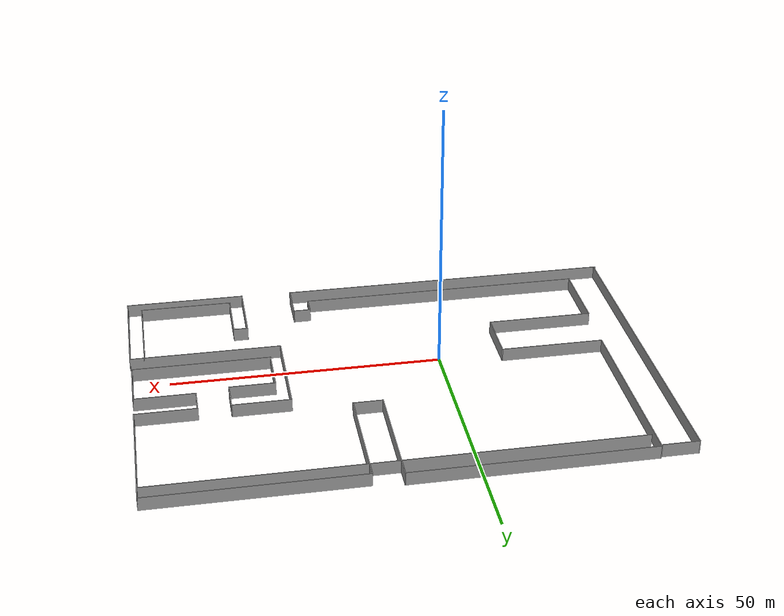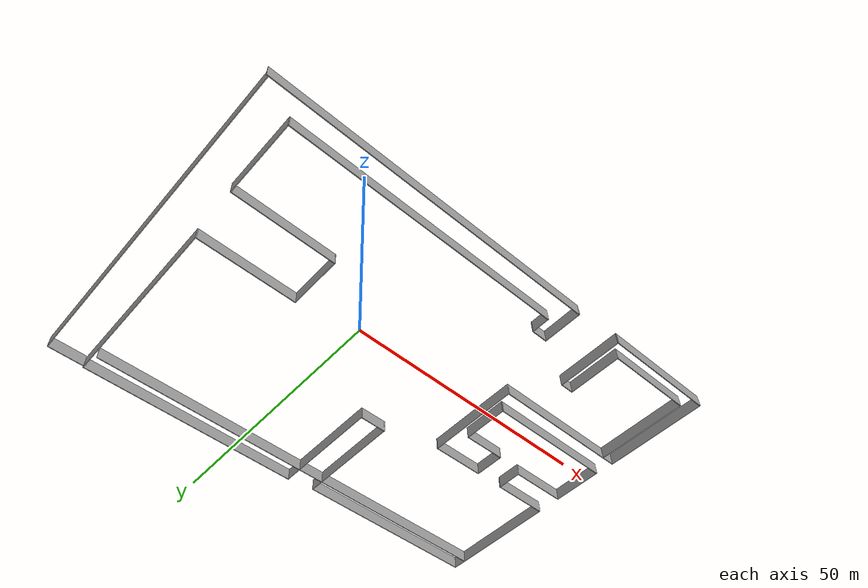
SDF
<?xml version='1.0'?>
<sdf version='1.6'>
  <model name='multivehicle_course'>
    <pose frame=''>9.55814 5.54542 0 0 -0 0</pose>
    <link name='Wall_56'>
      <collision name='Wall_56_Collision'>
        <geometry>
          <box>
            <size>63 0.15 2.5</size>
          </box>
        </geometry>
        <pose frame=''>0 0 1.25 0 -0 0</pose>
      </collision>
      <visual name='Wall_56_Visual'>
        <pose frame=''>0 0 1.25 0 -0 0</pose>
        <geometry>
          <box>
            <size>63 0.15 2.5</size>
          </box>
        </geometry>
        <material>
          <script>
            <uri>file://media/materials/scripts/gazebo.material</uri>
            <name>Gazebo/Grey</name>
          </script>
          <ambient>1 1 1 1</ambient>
        </material>
        <meta>
          <layer>0</layer>
        </meta>
      </visual>
      <pose frame=''>-15.925 -31.4 0 0 -0 0</pose>
    </link>
    <link name='Wall_57'>
      <collision name='Wall_57_Collision'>
        <geometry>
          <box>
            <size>7.5 0.15 2.5</size>
          </box>
        </geometry>
        <pose frame=''>0 0 1.25 0 -0 0</pose>
      </collision>
      <visual name='Wall_57_Visual'>
        <pose frame=''>0 0 1.25 0 -0 0</pose>
        <geometry>
          <box>
            <size>7.5 0.15 2.5</size>
          </box>
        </geometry>
        <material>
          <script>
            <uri>file://media/materials/scripts/gazebo.material</uri>
            <name>Gazebo/Grey</name>
          </script>
          <ambient>1 1 1 1</ambient>
        </material>
        <meta>
          <layer>0</layer>
        </meta>
      </visual>
      <pose frame=''>15.5 -27.725 0 0 -0 1.5708</pose>
    </link>
    <link name='Wall_58'>
      <collision name='Wall_58_Collision'>
        <geometry>
          <box>
            <size>3.25 0.15 2.5</size>
          </box>
        </geometry>
        <pose frame=''>0 0 1.25 0 -0 0</pose>
      </collision>
      <visual name='Wall_58_Visual'>
        <pose frame=''>0 0 1.25 0 -0 0</pose>
        <geometry>
          <box>
            <size>3.25 0.15 2.5</size>
          </box>
        </geometry>
        <material>
          <script>
            <uri>file://media/materials/scripts/gazebo.material</uri>
            <name>Gazebo/Grey</name>
          </script>
          <ambient>1 1 1 1</ambient>
        </material>
        <meta>
          <layer>0</layer>
        </meta>
      </visual>
      <pose frame=''>13.95 -24.05 0 0 -0 3.14159</pose>
    </link>
    <link name='Wall_59'>
      <collision name='Wall_59_Collision'>
        <geometry>
          <box>
            <size>3.5 0.15 2.5</size>
          </box>
        </geometry>
        <pose frame=''>0 0 1.25 0 -0 0</pose>
      </collision>
      <visual name='Wall_59_Visual'>
        <pose frame=''>0 0 1.25 0 -0 0</pose>
        <geometry>
          <box>
            <size>3.5 0.15 2.5</size>
          </box>
        </geometry>
        <material>
          <script>
            <uri>file://media/materials/scripts/gazebo.material</uri>
            <name>Gazebo/Grey</name>
          </script>
          <ambient>1 1 1 1</ambient>
        </material>
        <meta>
          <layer>0</layer>
        </meta>
      </visual>
      <pose frame=''>12.4 -25.725 0 0 -0 -1.5708</pose>
    </link>
    <link name='Wall_60'>
      <collision name='Wall_60_Collision'>
        <geometry>
          <box>
            <size>53.25 0.15 2.5</size>
          </box>
        </geometry>
        <pose frame=''>0 0 1.25 0 -0 0</pose>
      </collision>
      <visual name='Wall_60_Visual'>
        <pose frame=''>0 0 1.25 0 -0 0</pose>
        <geometry>
          <box>
            <size>53.25 0.15 2.5</size>
          </box>
        </geometry>
        <material>
          <script>
            <uri>file://media/materials/scripts/gazebo.material</uri>
            <name>Gazebo/Grey</name>
          </script>
          <ambient>1 1 1 1</ambient>
        </material>
        <meta>
          <layer>0</layer>
        </meta>
      </visual>
      <pose frame=''>-14.15 -27.4 0 0 -0 3.14159</pose>
    </link>
    <link name='Wall_61'>
      <collision name='Wall_61_Collision'>
        <geometry>
          <box>
            <size>14.25 0.15 2.5</size>
          </box>
        </geometry>
        <pose frame=''>0 0 1.25 0 -0 0</pose>
      </collision>
      <visual name='Wall_61_Visual'>
        <pose frame=''>0 0 1.25 0 -0 0</pose>
        <geometry>
          <box>
            <size>14.25 0.15 2.5</size>
          </box>
        </geometry>
        <material>
          <script>
            <uri>file://media/materials/scripts/gazebo.material</uri>
            <name>Gazebo/Grey</name>
          </script>
          <ambient>1 1 1 1</ambient>
        </material>
        <meta>
          <layer>0</layer>
        </meta>
      </visual>
      <pose frame=''>-40.7 -20.35 0 0 -0 1.5708</pose>
    </link>
    <link name='Wall_62'>
      <collision name='Wall_62_Collision'>
        <geometry>
          <box>
            <size>19.75 0.15 2.5</size>
          </box>
        </geometry>
        <pose frame=''>0 0 1.25 0 -0 0</pose>
      </collision>
      <visual name='Wall_62_Visual'>
        <pose frame=''>0 0 1.25 0 -0 0</pose>
        <geometry>
          <box>
            <size>19.75 0.15 2.5</size>
          </box>
        </geometry>
        <material>
          <script>
            <uri>file://media/materials/scripts/gazebo.material</uri>
            <name>Gazebo/Grey</name>
          </script>
          <ambient>1 1 1 1</ambient>
        </material>
        <meta>
          <layer>0</layer>
        </meta>
      </visual>
      <pose frame=''>-30.9 -13.3 0 0 -0 0</pose>
    </link>
    <link name='Wall_63'>
      <collision name='Wall_63_Collision'>
        <geometry>
          <box>
            <size>10.25 0.15 2.5</size>
          </box>
        </geometry>
        <pose frame=''>0 0 1.25 0 -0 0</pose>
      </collision>
      <visual name='Wall_63_Visual'>
        <pose frame=''>0 0 1.25 0 -0 0</pose>
        <geometry>
          <box>
            <size>10.25 0.15 2.5</size>
          </box>
        </geometry>
        <material>
          <script>
            <uri>file://media/materials/scripts/gazebo.material</uri>
            <name>Gazebo/Grey</name>
          </script>
          <ambient>1 1 1 1</ambient>
        </material>
        <meta>
          <layer>0</layer>
        </meta>
      </visual>
      <pose frame=''>-21.1 -8.25 0 0 -0 1.5708</pose>
    </link>
    <link name='Wall_64'>
      <collision name='Wall_64_Collision'>
        <geometry>
          <box>
            <size>19.25 0.15 2.5</size>
          </box>
        </geometry>
        <pose frame=''>0 0 1.25 0 -0 0</pose>
      </collision>
      <visual name='Wall_64_Visual'>
        <pose frame=''>0 0 1.25 0 -0 0</pose>
        <geometry>
          <box>
            <size>19.25 0.15 2.5</size>
          </box>
        </geometry>
        <material>
          <script>
            <uri>file://media/materials/scripts/gazebo.material</uri>
            <name>Gazebo/Grey</name>
          </script>
          <ambient>1 1 1 1</ambient>
        </material>
        <meta>
          <layer>0</layer>
        </meta>
      </visual>
      <pose frame=''>-30.65 -3.2 0 0 -0 3.14159</pose>
    </link>
    <link name='Wall_65'>
      <collision name='Wall_65_Collision'>
        <geometry>
          <box>
            <size>35 0.15 2.5</size>
          </box>
        </geometry>
        <pose frame=''>0 0 1.25 0 -0 0</pose>
      </collision>
      <visual name='Wall_65_Visual'>
        <pose frame=''>0 0 1.25 0 -0 0</pose>
        <geometry>
          <box>
            <size>35 0.15 2.5</size>
          </box>
        </geometry>
        <material>
          <script>
            <uri>file://media/materials/scripts/gazebo.material</uri>
            <name>Gazebo/Grey</name>
          </script>
          <ambient>1 1 1 1</ambient>
        </material>
        <meta>
          <layer>0</layer>
        </meta>
      </visual>
      <pose frame=''>-40.2 14.225 0 0 -0 1.5708</pose>
    </link>
    <link name='Wall_66'>
      <collision name='Wall_66_Collision'>
        <geometry>
          <box>
            <size>44 0.15 2.5</size>
          </box>
        </geometry>
        <pose frame=''>0 0 1.25 0 -0 0</pose>
      </collision>
      <visual name='Wall_66_Visual'>
        <pose frame=''>0 0 1.25 0 -0 0</pose>
        <geometry>
          <box>
            <size>44 0.15 2.5</size>
          </box>
        </geometry>
        <material>
          <script>
            <uri>file://media/materials/scripts/gazebo.material</uri>
            <name>Gazebo/Grey</name>
          </script>
          <ambient>1 1 1 1</ambient>
        </material>
        <meta>
          <layer>0</layer>
        </meta>
      </visual>
      <pose frame=''>-18.275 31.65 0 0 -0 0</pose>
    </link>
    <link name='Wall_67'>
      <collision name='Wall_67_Collision'>
        <geometry>
          <box>
            <size>22 0.15 2.5</size>
          </box>
        </geometry>
        <pose frame=''>0 0 1.25 0 -0 0</pose>
      </collision>
      <visual name='Wall_67_Visual'>
        <pose frame=''>0 0 1.25 0 -0 0</pose>
        <geometry>
          <box>
            <size>22 0.15 2.5</size>
          </box>
        </geometry>
        <material>
          <script>
            <uri>file://media/materials/scripts/gazebo.material</uri>
            <name>Gazebo/Grey</name>
          </script>
          <ambient>1 1 1 1</ambient>
        </material>
        <meta>
          <layer>0</layer>
        </meta>
      </visual>
      <pose frame=''>3.65 20.725 0 0 -0 -1.5708</pose>
    </link>
    <link name='Wall_68'>
      <collision name='Wall_68_Collision'>
        <geometry>
          <box>
            <size>5.5 0.15 2.5</size>
          </box>
        </geometry>
        <pose frame=''>0 0 1.25 0 -0 0</pose>
      </collision>
      <visual name='Wall_68_Visual'>
        <pose frame=''>0 0 1.25 0 -0 0</pose>
        <geometry>
          <box>
            <size>5.5 0.15 2.5</size>
          </box>
        </geometry>
        <material>
          <script>
            <uri>file://media/materials/scripts/gazebo.material</uri>
            <name>Gazebo/Grey</name>
          </script>
          <ambient>1 1 1 1</ambient>
        </material>
        <meta>
          <layer>0</layer>
        </meta>
      </visual>
      <pose frame=''>6.325 9.8 0 0 -0 0</pose>
    </link>
    <link name='Wall_69'>
      <collision name='Wall_69_Collision'>
        <geometry>
          <box>
            <size>21.25 0.15 2.5</size>
          </box>
        </geometry>
        <pose frame=''>0 0 1.25 0 -0 0</pose>
      </collision>
      <visual name='Wall_69_Visual'>
        <pose frame=''>0 0 1.25 0 -0 0</pose>
        <geometry>
          <box>
            <size>21.25 0.15 2.5</size>
          </box>
        </geometry>
        <material>
          <script>
            <uri>file://media/materials/scripts/gazebo.material</uri>
            <name>Gazebo/Grey</name>
          </script>
          <ambient>1 1 1 1</ambient>
        </material>
        <meta>
          <layer>0</layer>
        </meta>
      </visual>
      <pose frame=''>9 20.35 0 0 -0 1.5708</pose>
    </link>
    <link name='Wall_70'>
      <collision name='Wall_70_Collision'>
        <geometry>
          <box>
            <size>38.25 0.15 2.5</size>
          </box>
        </geometry>
        <pose frame=''>0 0 1.25 0 -0 0</pose>
      </collision>
      <visual name='Wall_70_Visual'>
        <pose frame=''>0 0 1.25 0 -0 0</pose>
        <geometry>
          <box>
            <size>38.25 0.15 2.5</size>
          </box>
        </geometry>
        <material>
          <script>
            <uri>file://media/materials/scripts/gazebo.material</uri>
            <name>Gazebo/Grey</name>
          </script>
          <ambient>1 1 1 1</ambient>
        </material>
        <meta>
          <layer>0</layer>
        </meta>
      </visual>
      <pose frame=''>28.05 30.9 0 0 -0 0</pose>
    </link>
    <link name='Wall_71'>
      <collision name='Wall_71_Collision'>
        <geometry>
          <box>
            <size>24.25 0.15 2.5</size>
          </box>
        </geometry>
        <pose frame=''>0 0 1.25 0 -0 0</pose>
      </collision>
      <visual name='Wall_71_Visual'>
        <pose frame=''>0 0 1.25 0 -0 0</pose>
        <geometry>
          <box>
            <size>24.25 0.15 2.5</size>
          </box>
        </geometry>
        <material>
          <script>
            <uri>file://media/materials/scripts/gazebo.material</uri>
            <name>Gazebo/Grey</name>
          </script>
          <ambient>1 1 1 1</ambient>
        </material>
        <meta>
          <layer>0</layer>
        </meta>
      </visual>
      <pose frame=''>47.1 18.85 0 0 -0 -1.5708</pose>
    </link>
    <link name='Wall_72'>
      <collision name='Wall_72_Collision'>
        <geometry>
          <box>
            <size>11.25 0.15 2.5</size>
          </box>
        </geometry>
        <pose frame=''>0 0 1.25 0 -0 0</pose>
      </collision>
      <visual name='Wall_72_Visual'>
        <pose frame=''>0 0 1.25 0 -0 0</pose>
        <geometry>
          <box>
            <size>11.25 0.15 2.5</size>
          </box>
        </geometry>
        <material>
          <script>
            <uri>file://media/materials/scripts/gazebo.material</uri>
            <name>Gazebo/Grey</name>
          </script>
          <ambient>1 1 1 1</ambient>
        </material>
        <meta>
          <layer>0</layer>
        </meta>
      </visual>
      <pose frame=''>41.55 6.8 0 0 -0 3.14159</pose>
    </link>
    <link name='Wall_73'>
      <collision name='Wall_73_Collision'>
        <geometry>
          <box>
            <size>5 0.15 2.5</size>
          </box>
        </geometry>
        <pose frame=''>0 0 1.25 0 -0 0</pose>
      </collision>
      <visual name='Wall_73_Visual'>
        <pose frame=''>0 0 1.25 0 -0 0</pose>
        <geometry>
          <box>
            <size>5 0.15 2.5</size>
          </box>
        </geometry>
        <material>
          <script>
            <uri>file://media/materials/scripts/gazebo.material</uri>
            <name>Gazebo/Grey</name>
          </script>
          <ambient>1 1 1 1</ambient>
        </material>
        <meta>
          <layer>0</layer>
        </meta>
      </visual>
      <pose frame=''>36 4.375 0 0 -0 -1.5708</pose>
    </link>
    <link name='Wall_74'>
      <collision name='Wall_74_Collision'>
        <geometry>
          <box>
            <size>11.25 0.15 2.5</size>
          </box>
        </geometry>
        <pose frame=''>0 0 1.25 0 -0 0</pose>
      </collision>
      <visual name='Wall_74_Visual'>
        <pose frame=''>0 0 1.25 0 -0 0</pose>
        <geometry>
          <box>
            <size>11.25 0.15 2.5</size>
          </box>
        </geometry>
        <material>
          <script>
            <uri>file://media/materials/scripts/gazebo.material</uri>
            <name>Gazebo/Grey</name>
          </script>
          <ambient>1 1 1 1</ambient>
        </material>
        <meta>
          <layer>0</layer>
        </meta>
      </visual>
      <pose frame=''>41.55 1.95 0 0 -0 0</pose>
    </link>
    <link name='Wall_75'>
      <collision name='Wall_75_Collision'>
        <geometry>
          <box>
            <size>10 0.15 2.5</size>
          </box>
        </geometry>
        <pose frame=''>0 0 1.25 0 -0 0</pose>
      </collision>
      <visual name='Wall_75_Visual'>
        <pose frame=''>0 0 1.25 0 -0 0</pose>
        <geometry>
          <box>
            <size>10 0.15 2.5</size>
          </box>
        </geometry>
        <material>
          <script>
            <uri>file://media/materials/scripts/gazebo.material</uri>
            <name>Gazebo/Grey</name>
          </script>
          <ambient>1 1 1 1</ambient>
        </material>
        <meta>
          <layer>0</layer>
        </meta>
      </visual>
      <pose frame=''>47.1 -2.975 0 0 -0 -1.5708</pose>
    </link>
    <link name='Wall_76'>
      <collision name='Wall_76_Collision'>
        <geometry>
          <box>
            <size>25.5 0.15 2.5</size>
          </box>
        </geometry>
        <pose frame=''>0 0 1.25 0 -0 0</pose>
      </collision>
      <visual name='Wall_76_Visual'>
        <pose frame=''>0 0 1.25 0 -0 0</pose>
        <geometry>
          <box>
            <size>25.5 0.15 2.5</size>
          </box>
        </geometry>
        <material>
          <script>
            <uri>file://media/materials/scripts/gazebo.material</uri>
            <name>Gazebo/Grey</name>
          </script>
          <ambient>1 1 1 1</ambient>
        </material>
        <meta>
          <layer>0</layer>
        </meta>
      </visual>
      <pose frame=''>34.425 -7.9 0 0 -0 3.14159</pose>
    </link>
    <link name='Wall_77'>
      <collision name='Wall_77_Collision'>
        <geometry>
          <box>
            <size>9 0.15 2.5</size>
          </box>
        </geometry>
        <pose frame=''>0 0 1.25 0 -0 0</pose>
      </collision>
      <visual name='Wall_77_Visual'>
        <pose frame=''>0 0 1.25 0 -0 0</pose>
        <geometry>
          <box>
            <size>9 0.15 2.5</size>
          </box>
        </geometry>
        <material>
          <script>
            <uri>file://media/materials/scripts/gazebo.material</uri>
            <name>Gazebo/Grey</name>
          </script>
          <ambient>1 1 1 1</ambient>
        </material>
        <meta>
          <layer>0</layer>
        </meta>
      </visual>
      <pose frame=''>21.75 -3.475 0 0 -0 1.5708</pose>
    </link>
    <link name='Wall_78'>
      <collision name='Wall_78_Collision'>
        <geometry>
          <box>
            <size>8.5 0.15 2.5</size>
          </box>
        </geometry>
        <pose frame=''>0 0 1.25 0 -0 0</pose>
      </collision>
      <visual name='Wall_78_Visual'>
        <pose frame=''>0 0 1.25 0 -0 0</pose>
        <geometry>
          <box>
            <size>8.5 0.15 2.5</size>
          </box>
        </geometry>
        <material>
          <script>
            <uri>file://media/materials/scripts/gazebo.material</uri>
            <name>Gazebo/Grey</name>
          </script>
          <ambient>1 1 1 1</ambient>
        </material>
        <meta>
          <layer>0</layer>
        </meta>
      </visual>
      <pose frame=''>25.925 0.950001 0 0 -0 0</pose>
    </link>
    <link name='Wall_79'>
      <collision name='Wall_79_Collision'>
        <geometry>
          <box>
            <size>6 0.15 2.5</size>
          </box>
        </geometry>
        <pose frame=''>0 0 1.25 0 -0 0</pose>
      </collision>
      <visual name='Wall_79_Visual'>
        <pose frame=''>0 0 1.25 0 -0 0</pose>
        <geometry>
          <box>
            <size>6 0.15 2.5</size>
          </box>
        </geometry>
        <material>
          <script>
            <uri>file://media/materials/scripts/gazebo.material</uri>
            <name>Gazebo/Grey</name>
          </script>
          <ambient>1 1 1 1</ambient>
        </material>
        <meta>
          <layer>0</layer>
        </meta>
      </visual>
      <pose frame=''>30.1 3.875 0 0 -0 1.5708</pose>
    </link>
    <link name='Wall_80'>
      <collision name='Wall_80_Collision'>
        <geometry>
          <box>
            <size>10.75 0.15 2.5</size>
          </box>
        </geometry>
        <pose frame=''>0 0 1.25 0 -0 0</pose>
      </collision>
      <visual name='Wall_80_Visual'>
        <pose frame=''>0 0 1.25 0 -0 0</pose>
        <geometry>
          <box>
            <size>10.75 0.15 2.5</size>
          </box>
        </geometry>
        <material>
          <script>
            <uri>file://media/materials/scripts/gazebo.material</uri>
            <name>Gazebo/Grey</name>
          </script>
          <ambient>1 1 1 1</ambient>
        </material>
        <meta>
          <layer>0</layer>
        </meta>
      </visual>
      <pose frame=''>24.8 6.8 0 0 -0 3.14159</pose>
    </link>
    <link name='Wall_81'>
      <collision name='Wall_81_Collision'>
        <geometry>
          <box>
            <size>18.5 0.15 2.5</size>
          </box>
        </geometry>
        <pose frame=''>0 0 1.25 0 -0 0</pose>
      </collision>
      <visual name='Wall_81_Visual'>
        <pose frame=''>0 0 1.25 0 -0 0</pose>
        <geometry>
          <box>
            <size>18.5 0.15 2.5</size>
          </box>
        </geometry>
        <material>
          <script>
            <uri>file://media/materials/scripts/gazebo.material</uri>
            <name>Gazebo/Grey</name>
          </script>
          <ambient>1 1 1 1</ambient>
        </material>
        <meta>
          <layer>0</layer>
        </meta>
      </visual>
      <pose frame=''>19.5 -2.375 0 0 -0 -1.5708</pose>
    </link>
    <link name='Wall_82'>
      <collision name='Wall_82_Collision'>
        <geometry>
          <box>
            <size>28 0.15 2.5</size>
          </box>
        </geometry>
        <pose frame=''>0 0 1.25 0 -0 0</pose>
      </collision>
      <visual name='Wall_82_Visual'>
        <pose frame=''>0 0 1.25 0 -0 0</pose>
        <geometry>
          <box>
            <size>28 0.15 2.5</size>
          </box>
        </geometry>
        <material>
          <script>
            <uri>file://media/materials/scripts/gazebo.material</uri>
            <name>Gazebo/Grey</name>
          </script>
          <ambient>1 1 1 1</ambient>
        </material>
        <meta>
          <layer>0</layer>
        </meta>
      </visual>
      <pose frame=''>33.425 -11.55 0 0 -0 0</pose>
    </link>
    <link name='Wall_83'>
      <collision name='Wall_83_Collision'>
        <geometry>
          <box>
            <size>20.25 0.15 2.5</size>
          </box>
        </geometry>
        <pose frame=''>0 0 1.25 0 -0 0</pose>
      </collision>
      <visual name='Wall_83_Visual'>
        <pose frame=''>0 0 1.25 0 -0 0</pose>
        <geometry>
          <box>
            <size>20.25 0.15 2.5</size>
          </box>
        </geometry>
        <material>
          <script>
            <uri>file://media/materials/scripts/gazebo.material</uri>
            <name>Gazebo/Grey</name>
          </script>
          <ambient>1 1 1 1</ambient>
        </material>
        <meta>
          <layer>0</layer>
        </meta>
      </visual>
      <pose frame=''>47.35 -21.6 0 0 -0 -1.5708</pose>
    </link>
    <link name='Wall_84'>
      <collision name='Wall_84_Collision'>
        <geometry>
          <box>
            <size>22.5 0.15 2.5</size>
          </box>
        </geometry>
        <pose frame=''>0 0 1.25 0 -0 0</pose>
      </collision>
      <visual name='Wall_84_Visual'>
        <pose frame=''>0 0 1.25 0 -0 0</pose>
        <geometry>
          <box>
            <size>22.5 0.15 2.5</size>
          </box>
        </geometry>
        <material>
          <script>
            <uri>file://media/materials/scripts/gazebo.material</uri>
            <name>Gazebo/Grey</name>
          </script>
          <ambient>1 1 1 1</ambient>
        </material>
        <meta>
          <layer>0</layer>
        </meta>
      </visual>
      <pose frame=''>36.175 -31.65 0 0 -0 3.14159</pose>
    </link>
    <link name='Wall_85'>
      <collision name='Wall_85_Collision'>
        <geometry>
          <box>
            <size>12.75 0.15 2.5</size>
          </box>
        </geometry>
        <pose frame=''>0 0 1.25 0 -0 0</pose>
      </collision>
      <visual name='Wall_85_Visual'>
        <pose frame=''>0 0 1.25 0 -0 0</pose>
        <geometry>
          <box>
            <size>12.75 0.15 2.5</size>
          </box>
        </geometry>
        <material>
          <script>
            <uri>file://media/materials/scripts/gazebo.material</uri>
            <name>Gazebo/Grey</name>
          </script>
          <ambient>1 1 1 1</ambient>
        </material>
        <meta>
          <layer>0</layer>
        </meta>
      </visual>
      <pose frame=''>25 -25.35 0 0 -0 1.5708</pose>
    </link>
    <link name='Wall_86'>
      <collision name='Wall_86_Collision'>
        <geometry>
          <box>
            <size>2.75 0.15 2.5</size>
          </box>
        </geometry>
        <pose frame=''>0 0 1.25 0 -0 0</pose>
      </collision>
      <visual name='Wall_86_Visual'>
        <pose frame=''>0 0 1.25 0 -0 0</pose>
        <geometry>
          <box>
            <size>2.75 0.15 2.5</size>
          </box>
        </geometry>
        <material>
          <script>
            <uri>file://media/materials/scripts/gazebo.material</uri>
            <name>Gazebo/Grey</name>
          </script>
          <ambient>1 1 1 1</ambient>
        </material>
        <meta>
          <layer>0</layer>
        </meta>
      </visual>
      <pose frame=''>26.3 -19.05 0 0 -0 0</pose>
    </link>
    <link name='Wall_87'>
      <collision name='Wall_87_Collision'>
        <geometry>
          <box>
            <size>10.5 0.15 2.5</size>
          </box>
        </geometry>
        <pose frame=''>0 0 1.25 0 -0 0</pose>
      </collision>
      <visual name='Wall_87_Visual'>
        <pose frame=''>0 0 1.25 0 -0 0</pose>
        <geometry>
          <box>
            <size>10.5 0.15 2.5</size>
          </box>
        </geometry>
        <material>
          <script>
            <uri>file://media/materials/scripts/gazebo.material</uri>
            <name>Gazebo/Grey</name>
          </script>
          <ambient>1 1 1 1</ambient>
        </material>
        <meta>
          <layer>0</layer>
        </meta>
      </visual>
      <pose frame=''>27.6 -24.225 0 0 -0 -1.5708</pose>
    </link>
    <link name='Wall_88'>
      <collision name='Wall_88_Collision'>
        <geometry>
          <box>
            <size>17.25 0.15 2.5</size>
          </box>
        </geometry>
        <pose frame=''>0 0 1.25 0 -0 0</pose>
      </collision>
      <visual name='Wall_88_Visual'>
        <pose frame=''>0 0 1.25 0 -0 0</pose>
        <geometry>
          <box>
            <size>17.25 0.15 2.5</size>
          </box>
        </geometry>
        <material>
          <script>
            <uri>file://media/materials/scripts/gazebo.material</uri>
            <name>Gazebo/Grey</name>
          </script>
          <ambient>1 1 1 1</ambient>
        </material>
        <meta>
          <layer>0</layer>
        </meta>
      </visual>
      <pose frame=''>36.15 -29.4 0 0 -0 0</pose>
    </link>
    <link name='Wall_89'>
      <collision name='Wall_89_Collision'>
        <geometry>
          <box>
            <size>18 0.15 2.5</size>
          </box>
        </geometry>
        <pose frame=''>0 0 1.25 0 -0 0</pose>
      </collision>
      <visual name='Wall_89_Visual'>
        <pose frame=''>0 0 1.25 0 -0 0</pose>
        <geometry>
          <box>
            <size>18 0.15 2.5</size>
          </box>
        </geometry>
        <material>
          <script>
            <uri>file://media/materials/scripts/gazebo.material</uri>
            <name>Gazebo/Grey</name>
          </script>
          <ambient>1 1 1 1</ambient>
        </material>
        <meta>
          <layer>0</layer>
        </meta>
      </visual>
      <pose frame=''>44.7 -20.475 0 0 -0 1.5708</pose>
    </link>
    <link name='Wall_91'>
      <collision name='Wall_91_Collision'>
        <geometry>
          <box>
            <size>62.75 0.15 2.5</size>
          </box>
        </geometry>
        <pose frame=''>0 0 1.25 0 -0 0</pose>
      </collision>
      <visual name='Wall_91_Visual'>
        <pose frame=''>0 0 1.25 0 -0 0</pose>
        <geometry>
          <box>
            <size>62.75 0.15 2.5</size>
          </box>
        </geometry>
        <material>
          <script>
            <uri>file://media/materials/scripts/gazebo.material</uri>
            <name>Gazebo/Grey</name>
          </script>
          <ambient>1 1 1 1</ambient>
        </material>
        <meta>
          <layer>0</layer>
        </meta>
      </visual>
      <pose frame=''>-47.0494 0.03405 0 0 -0 1.5708</pose>
    </link>
    <link name='Wall_92'>
      <collision name='Wall_92_Collision'>
        <geometry>
          <box>
            <size>6.75 0.15 2.5</size>
          </box>
        </geometry>
        <pose frame=''>0 0 1.25 0 -0 0</pose>
      </collision>
      <visual name='Wall_92_Visual'>
        <pose frame=''>0 0 1.25 0 -0 0</pose>
        <geometry>
          <box>
            <size>6.75 0.15 2.5</size>
          </box>
        </geometry>
        <material>
          <script>
            <uri>file://media/materials/scripts/gazebo.material</uri>
            <name>Gazebo/Grey</name>
          </script>
          <ambient>1 1 1 1</ambient>
        </material>
        <meta>
          <layer>0</layer>
        </meta>
      </visual>
      <pose frame=''>-43.7494 31.334 0 0 -0 0</pose>
    </link>
    <link name='Wall_94'>
      <collision name='Wall_94_Collision'>
        <geometry>
          <box>
            <size>86.75 0.15 2.5</size>
          </box>
        </geometry>
        <pose frame=''>0 0 1.25 0 -0 0</pose>
      </collision>
      <visual name='Wall_94_Visual'>
        <pose frame=''>0 0 1.25 0 -0 0</pose>
        <geometry>
          <box>
            <size>86.75 0.15 2.5</size>
          </box>
        </geometry>
        <material>
          <script>
            <uri>file://media/materials/scripts/gazebo.material</uri>
            <name>Gazebo/Grey</name>
          </script>
          <ambient>1 1 1 1</ambient>
        </material>
        <meta>
          <layer>0</layer>
        </meta>
      </visual>
      <pose frame=''>3.77924 28.1446 0 0 -0 0</pose>
    </link>
    <static>1</static>
  </model>
</sdf>
